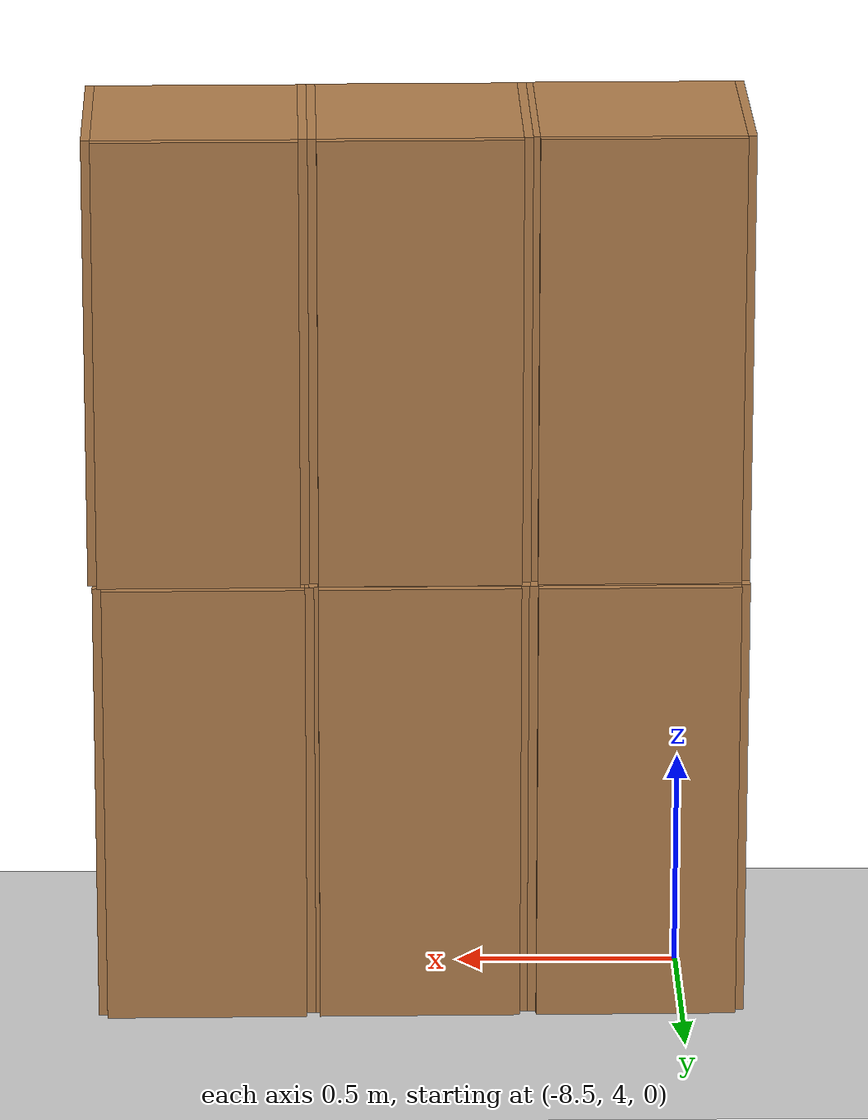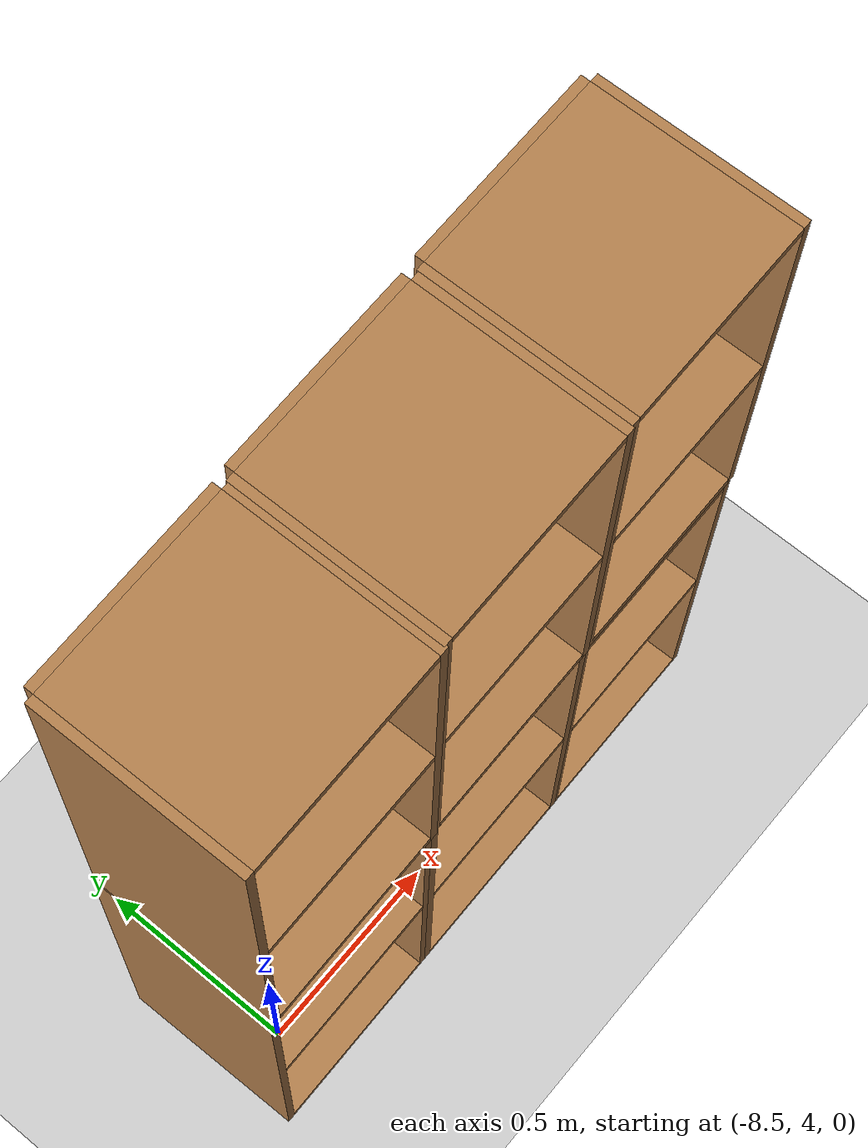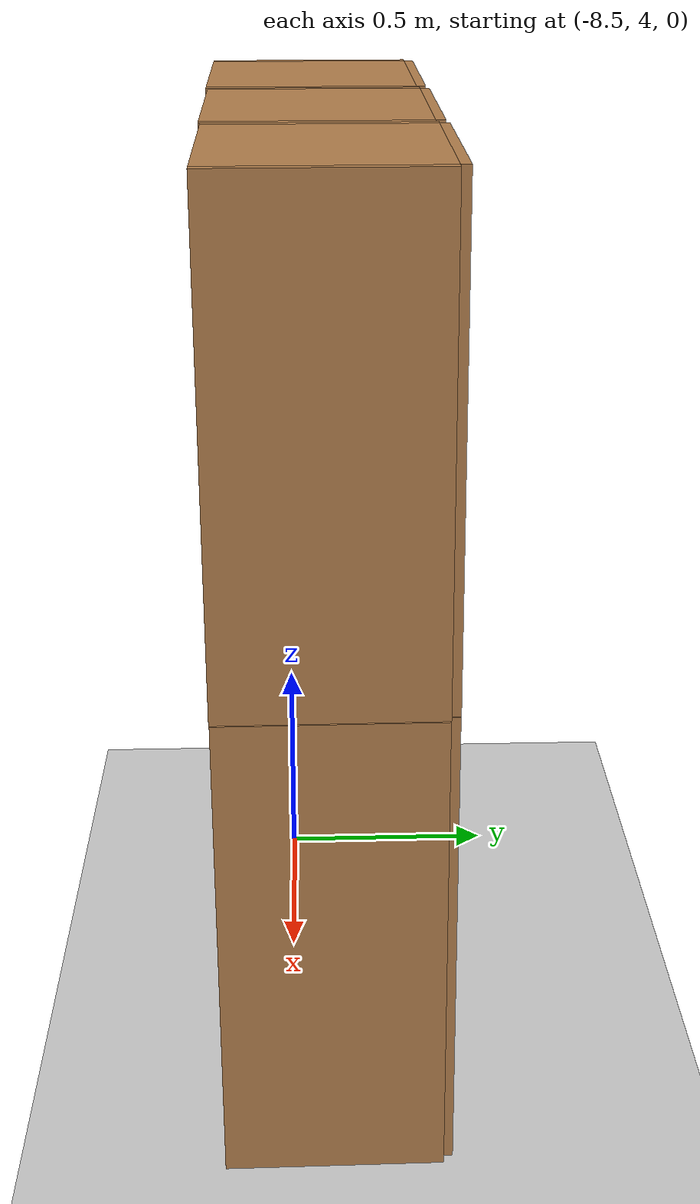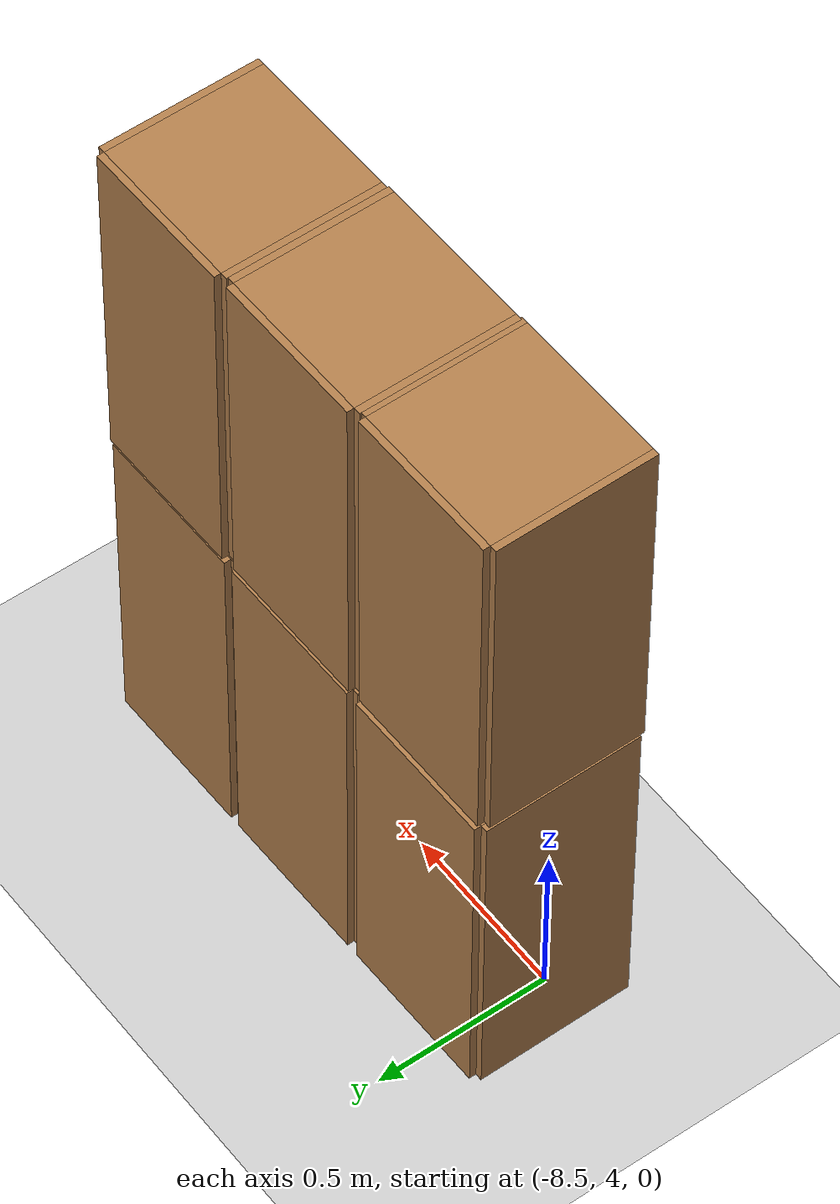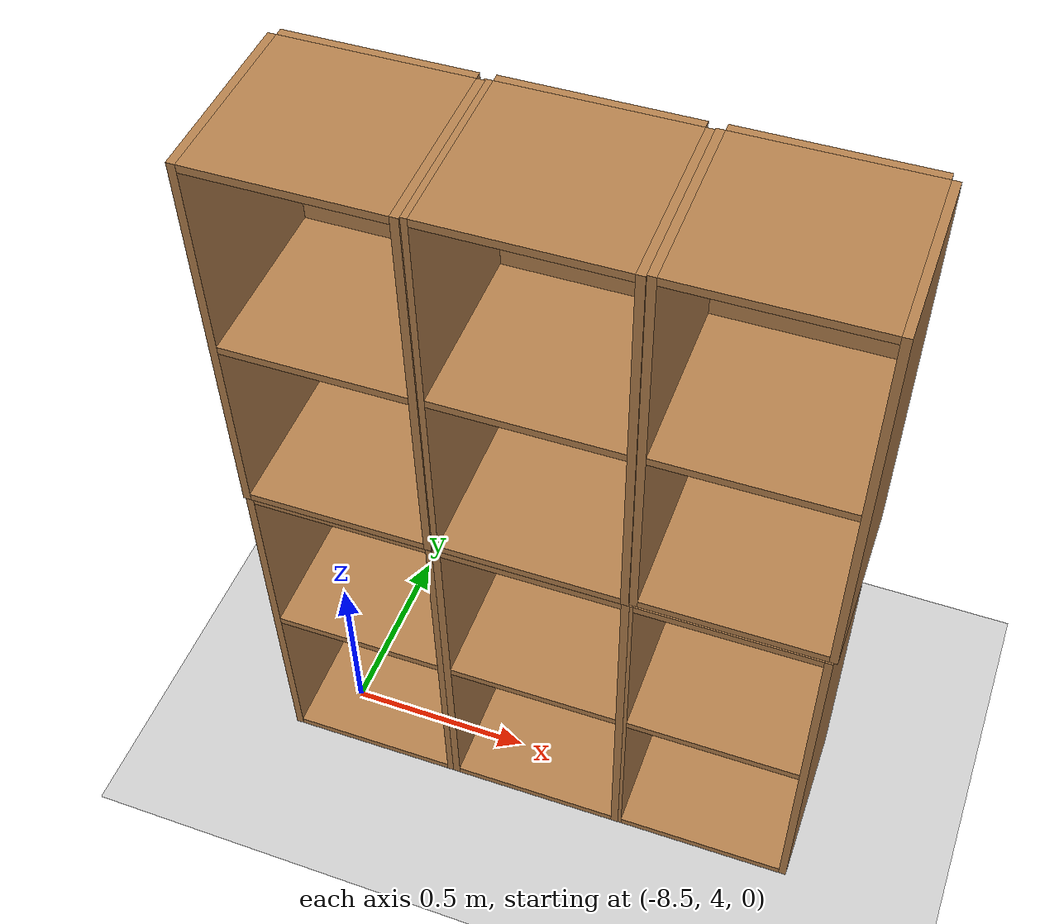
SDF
<sdf version="1.7">
 <world name="default">
  <model name="ground_plane">
   <static>1</static>
   <link name="link">
    <collision name="collision">
     <geometry><plane><normal>0 0 1</normal><size>100 100</size></plane></geometry>
     <surface><friction><ode><mu>100</mu><mu2>50</mu2></ode></friction></surface>
    </collision>
    <visual name="visual">
     <cast_shadows>0</cast_shadows>
     <geometry><plane><normal>0 0 1</normal><size>100 100</size></plane></geometry>
     <material>
      <script><uri>file://media/materials/scripts/gazebo.material</uri><name>Gazebo/Grey</name></script>
     </material>
    </visual>
   </link>
  </model>
  <model name="cabinet_clone">
   <static>1</static>
   <link name="cabinet_bottom_plate">
    <inertial>
     <pose>0 0 -1 0 -0 0</pose>
     <inertia><ixx>2.05</ixx><ixy>0</ixy><ixz>0</ixz><iyy>2.05</iyy><iyz>0</iyz><izz>2.05</izz></inertia>
     <mass>25</mass>
    </inertial>
    <collision name="cabinet_bottom_plate_geom">
     <pose>0 0 0.01 0 -0 0</pose>
     <geometry><box><size>0.45 0.45 0.02</size></box></geometry>
    </collision>
    <visual name="cabinet_bottom_plate_geom_visual">
     <pose>0 0 0.01 0 -0 0</pose>
     <geometry><box><size>0.45 0.45 0.02</size></box></geometry>
     <material>
      <script><uri>file://media/materials/scripts/gazebo.material</uri><name>Gazebo/Wood</name></script>
     </material>
    </visual>
    <collision name="cabinet_bottom_plate_geom_cabinet_back_plate">
     <pose>0.235 0 0.51 0 -0 0</pose>
     <geometry><box><size>0.02 0.45 1.02</size></box></geometry>
    </collision>
    <visual name="cabinet_bottom_plate_geom_cabinet_back_plate_visual">
     <pose>0.235 0 0.51 0 -0 0</pose>
     <geometry><box><size>0.02 0.45 1.02</size></box></geometry>
     <material>
      <script><uri>file://media/materials/scripts/gazebo.material</uri><name>Gazebo/Wood</name></script>
     </material>
    </visual>
    <collision name="cabinet_bottom_plate_geom_cabinet_left_plate">
     <pose>0 0.235 0.51 0 -0 0</pose>
     <geometry><box><size>0.45 0.02 1.02</size></box></geometry>
    </collision>
    <visual name="cabinet_bottom_plate_geom_cabinet_left_plate_visual">
     <pose>0 0.235 0.51 0 -0 0</pose>
     <geometry><box><size>0.45 0.02 1.02</size></box></geometry>
     <material>
      <script><uri>file://media/materials/scripts/gazebo.material</uri><name>Gazebo/Wood</name></script>
     </material>
    </visual>
    <collision name="cabinet_bottom_plate_geom_cabinet_middle_plate">
     <pose>0 0 0.51 0 -0 0</pose>
     <geometry><box><size>0.45 0.45 0.02</size></box></geometry>
    </collision>
    <visual name="cabinet_bottom_plate_geom_cabinet_middle_plate_visual">
     <pose>0 0 0.51 0 -0 0</pose>
     <geometry><box><size>0.45 0.45 0.02</size></box></geometry>
     <material>
      <script><uri>file://media/materials/scripts/gazebo.material</uri><name>Gazebo/Wood</name></script>
     </material>
    </visual>
    <collision name="cabinet_bottom_plate_geom_cabinet_right_plate">
     <pose>0 -0.235 0.51 0 -0 0</pose>
     <geometry><box><size>0.45 0.02 1.02</size></box></geometry>
    </collision>
    <visual name="cabinet_bottom_plate_geom_cabinet_right_plate_visual">
     <pose>0 -0.235 0.51 0 -0 0</pose>
     <geometry><box><size>0.45 0.02 1.02</size></box></geometry>
     <material>
      <script><uri>file://media/materials/scripts/gazebo.material</uri><name>Gazebo/Wood</name></script>
     </material>
    </visual>
    <collision name="cabinet_bottom_plate_geom_cabinet_top_plate">
     <pose>0 0 1.01 0 -0 0</pose>
     <geometry><box><size>0.45 0.45 0.02</size></box></geometry>
    </collision>
    <visual name="cabinet_bottom_plate_geom_cabinet_top_plate_visual">
     <pose>0 0 1.01 0 -0 0</pose>
     <geometry><box><size>0.45 0.45 0.02</size></box></geometry>
     <material>
      <script><uri>file://media/materials/scripts/gazebo.material</uri><name>Gazebo/Wood</name></script>
     </material>
    </visual>
   </link>
   <pose>-7.907 4.0827 0 0 -0 1.58053</pose>
  </model>
  <model name="cabinet_clone_0">
   <static>1</static>
   <link name="cabinet_bottom_plate">
    <inertial>
     <pose>0 0 -1 0 -0 0</pose>
     <inertia><ixx>2.05</ixx><ixy>0</ixy><ixz>0</ixz><iyy>2.05</iyy><iyz>0</iyz><izz>2.05</izz></inertia>
     <mass>25</mass>
    </inertial>
    <collision name="cabinet_bottom_plate_geom">
     <pose>0 0 0.01 0 -0 0</pose>
     <geometry><box><size>0.45 0.45 0.02</size></box></geometry>
    </collision>
    <visual name="cabinet_bottom_plate_geom_visual">
     <pose>0 0 0.01 0 -0 0</pose>
     <geometry><box><size>0.45 0.45 0.02</size></box></geometry>
     <material>
      <script><uri>file://media/materials/scripts/gazebo.material</uri><name>Gazebo/Wood</name></script>
     </material>
    </visual>
    <collision name="cabinet_bottom_plate_geom_cabinet_back_plate">
     <pose>0.235 0 0.51 0 -0 0</pose>
     <geometry><box><size>0.02 0.45 1.02</size></box></geometry>
    </collision>
    <visual name="cabinet_bottom_plate_geom_cabinet_back_plate_visual">
     <pose>0.235 0 0.51 0 -0 0</pose>
     <geometry><box><size>0.02 0.45 1.02</size></box></geometry>
     <material>
      <script><uri>file://media/materials/scripts/gazebo.material</uri><name>Gazebo/Wood</name></script>
     </material>
    </visual>
    <collision name="cabinet_bottom_plate_geom_cabinet_left_plate">
     <pose>0 0.235 0.51 0 -0 0</pose>
     <geometry><box><size>0.45 0.02 1.02</size></box></geometry>
    </collision>
    <visual name="cabinet_bottom_plate_geom_cabinet_left_plate_visual">
     <pose>0 0.235 0.51 0 -0 0</pose>
     <geometry><box><size>0.45 0.02 1.02</size></box></geometry>
     <material>
      <script><uri>file://media/materials/scripts/gazebo.material</uri><name>Gazebo/Wood</name></script>
     </material>
    </visual>
    <collision name="cabinet_bottom_plate_geom_cabinet_middle_plate">
     <pose>0 0 0.51 0 -0 0</pose>
     <geometry><box><size>0.45 0.45 0.02</size></box></geometry>
    </collision>
    <visual name="cabinet_bottom_plate_geom_cabinet_middle_plate_visual">
     <pose>0 0 0.51 0 -0 0</pose>
     <geometry><box><size>0.45 0.45 0.02</size></box></geometry>
     <material>
      <script><uri>file://media/materials/scripts/gazebo.material</uri><name>Gazebo/Wood</name></script>
     </material>
    </visual>
    <collision name="cabinet_bottom_plate_geom_cabinet_right_plate">
     <pose>0 -0.235 0.51 0 -0 0</pose>
     <geometry><box><size>0.45 0.02 1.02</size></box></geometry>
    </collision>
    <visual name="cabinet_bottom_plate_geom_cabinet_right_plate_visual">
     <pose>0 -0.235 0.51 0 -0 0</pose>
     <geometry><box><size>0.45 0.02 1.02</size></box></geometry>
     <material>
      <script><uri>file://media/materials/scripts/gazebo.material</uri><name>Gazebo/Wood</name></script>
     </material>
    </visual>
    <collision name="cabinet_bottom_plate_geom_cabinet_top_plate">
     <pose>0 0 1.01 0 -0 0</pose>
     <geometry><box><size>0.45 0.45 0.02</size></box></geometry>
    </collision>
    <visual name="cabinet_bottom_plate_geom_cabinet_top_plate_visual">
     <pose>0 0 1.01 0 -0 0</pose>
     <geometry><box><size>0.45 0.45 0.02</size></box></geometry>
     <material>
      <script><uri>file://media/materials/scripts/gazebo.material</uri><name>Gazebo/Wood</name></script>
     </material>
    </visual>
   </link>
   <pose>-7.42774 4.08772 0 0 -0 1.58053</pose>
  </model>
  <model name="cabinet_clone_1_clone">
   <static>1</static>
   <link name="cabinet_bottom_plate">
    <inertial>
     <pose>0 0 -1 0 -0 0</pose>
     <inertia><ixx>2.05</ixx><ixy>0</ixy><ixz>0</ixz><iyy>2.05</iyy><iyz>0</iyz><izz>2.05</izz></inertia>
     <mass>25</mass>
    </inertial>
    <collision name="cabinet_bottom_plate_geom">
     <pose>0 0 0.01 0 -0 0</pose>
     <geometry><box><size>0.45 0.45 0.02</size></box></geometry>
    </collision>
    <visual name="cabinet_bottom_plate_geom_visual">
     <pose>0 0 0.01 0 -0 0</pose>
     <geometry><box><size>0.45 0.45 0.02</size></box></geometry>
     <material>
      <script><uri>file://media/materials/scripts/gazebo.material</uri><name>Gazebo/Wood</name></script>
     </material>
    </visual>
    <collision name="cabinet_bottom_plate_geom_cabinet_back_plate">
     <pose>0.235 0 0.51 0 -0 0</pose>
     <geometry><box><size>0.02 0.45 1.02</size></box></geometry>
    </collision>
    <visual name="cabinet_bottom_plate_geom_cabinet_back_plate_visual">
     <pose>0.235 0 0.51 0 -0 0</pose>
     <geometry><box><size>0.02 0.45 1.02</size></box></geometry>
     <material>
      <script><uri>file://media/materials/scripts/gazebo.material</uri><name>Gazebo/Wood</name></script>
     </material>
    </visual>
    <collision name="cabinet_bottom_plate_geom_cabinet_left_plate">
     <pose>0 0.235 0.51 0 -0 0</pose>
     <geometry><box><size>0.45 0.02 1.02</size></box></geometry>
    </collision>
    <visual name="cabinet_bottom_plate_geom_cabinet_left_plate_visual">
     <pose>0 0.235 0.51 0 -0 0</pose>
     <geometry><box><size>0.45 0.02 1.02</size></box></geometry>
     <material>
      <script><uri>file://media/materials/scripts/gazebo.material</uri><name>Gazebo/Wood</name></script>
     </material>
    </visual>
    <collision name="cabinet_bottom_plate_geom_cabinet_middle_plate">
     <pose>0 0 0.51 0 -0 0</pose>
     <geometry><box><size>0.45 0.45 0.02</size></box></geometry>
    </collision>
    <visual name="cabinet_bottom_plate_geom_cabinet_middle_plate_visual">
     <pose>0 0 0.51 0 -0 0</pose>
     <geometry><box><size>0.45 0.45 0.02</size></box></geometry>
     <material>
      <script><uri>file://media/materials/scripts/gazebo.material</uri><name>Gazebo/Wood</name></script>
     </material>
    </visual>
    <collision name="cabinet_bottom_plate_geom_cabinet_right_plate">
     <pose>0 -0.235 0.51 0 -0 0</pose>
     <geometry><box><size>0.45 0.02 1.02</size></box></geometry>
    </collision>
    <visual name="cabinet_bottom_plate_geom_cabinet_right_plate_visual">
     <pose>0 -0.235 0.51 0 -0 0</pose>
     <geometry><box><size>0.45 0.02 1.02</size></box></geometry>
     <material>
      <script><uri>file://media/materials/scripts/gazebo.material</uri><name>Gazebo/Wood</name></script>
     </material>
    </visual>
    <collision name="cabinet_bottom_plate_geom_cabinet_top_plate">
     <pose>0 0 1.01 0 -0 0</pose>
     <geometry><box><size>0.45 0.45 0.02</size></box></geometry>
    </collision>
    <visual name="cabinet_bottom_plate_geom_cabinet_top_plate_visual">
     <pose>0 0 1.01 0 -0 0</pose>
     <geometry><box><size>0.45 0.45 0.02</size></box></geometry>
     <material>
      <script><uri>file://media/materials/scripts/gazebo.material</uri><name>Gazebo/Wood</name></script>
     </material>
    </visual>
   </link>
   <pose>-7.90804 4.07828 1.02659 0 -0 1.58053</pose>
  </model>
  <model name="cabinet_clone_1_clone_0">
   <static>1</static>
   <link name="cabinet_bottom_plate">
    <inertial>
     <pose>0 0 -1 0 -0 0</pose>
     <inertia><ixx>2.05</ixx><ixy>0</ixy><ixz>0</ixz><iyy>2.05</iyy><iyz>0</iyz><izz>2.05</izz></inertia>
     <mass>25</mass>
    </inertial>
    <collision name="cabinet_bottom_plate_geom">
     <pose>0 0 0.01 0 -0 0</pose>
     <geometry><box><size>0.45 0.45 0.02</size></box></geometry>
    </collision>
    <visual name="cabinet_bottom_plate_geom_visual">
     <pose>0 0 0.01 0 -0 0</pose>
     <geometry><box><size>0.45 0.45 0.02</size></box></geometry>
     <material>
      <script><uri>file://media/materials/scripts/gazebo.material</uri><name>Gazebo/Wood</name></script>
     </material>
    </visual>
    <collision name="cabinet_bottom_plate_geom_cabinet_back_plate">
     <pose>0.235 0 0.51 0 -0 0</pose>
     <geometry><box><size>0.02 0.45 1.02</size></box></geometry>
    </collision>
    <visual name="cabinet_bottom_plate_geom_cabinet_back_plate_visual">
     <pose>0.235 0 0.51 0 -0 0</pose>
     <geometry><box><size>0.02 0.45 1.02</size></box></geometry>
     <material>
      <script><uri>file://media/materials/scripts/gazebo.material</uri><name>Gazebo/Wood</name></script>
     </material>
    </visual>
    <collision name="cabinet_bottom_plate_geom_cabinet_left_plate">
     <pose>0 0.235 0.51 0 -0 0</pose>
     <geometry><box><size>0.45 0.02 1.02</size></box></geometry>
    </collision>
    <visual name="cabinet_bottom_plate_geom_cabinet_left_plate_visual">
     <pose>0 0.235 0.51 0 -0 0</pose>
     <geometry><box><size>0.45 0.02 1.02</size></box></geometry>
     <material>
      <script><uri>file://media/materials/scripts/gazebo.material</uri><name>Gazebo/Wood</name></script>
     </material>
    </visual>
    <collision name="cabinet_bottom_plate_geom_cabinet_middle_plate">
     <pose>0 0 0.51 0 -0 0</pose>
     <geometry><box><size>0.45 0.45 0.02</size></box></geometry>
    </collision>
    <visual name="cabinet_bottom_plate_geom_cabinet_middle_plate_visual">
     <pose>0 0 0.51 0 -0 0</pose>
     <geometry><box><size>0.45 0.45 0.02</size></box></geometry>
     <material>
      <script><uri>file://media/materials/scripts/gazebo.material</uri><name>Gazebo/Wood</name></script>
     </material>
    </visual>
    <collision name="cabinet_bottom_plate_geom_cabinet_right_plate">
     <pose>0 -0.235 0.51 0 -0 0</pose>
     <geometry><box><size>0.45 0.02 1.02</size></box></geometry>
    </collision>
    <visual name="cabinet_bottom_plate_geom_cabinet_right_plate_visual">
     <pose>0 -0.235 0.51 0 -0 0</pose>
     <geometry><box><size>0.45 0.02 1.02</size></box></geometry>
     <material>
      <script><uri>file://media/materials/scripts/gazebo.material</uri><name>Gazebo/Wood</name></script>
     </material>
    </visual>
    <collision name="cabinet_bottom_plate_geom_cabinet_top_plate">
     <pose>0 0 1.01 0 -0 0</pose>
     <geometry><box><size>0.45 0.45 0.02</size></box></geometry>
    </collision>
    <visual name="cabinet_bottom_plate_geom_cabinet_top_plate_visual">
     <pose>0 0 1.01 0 -0 0</pose>
     <geometry><box><size>0.45 0.45 0.02</size></box></geometry>
     <material>
      <script><uri>file://media/materials/scripts/gazebo.material</uri><name>Gazebo/Wood</name></script>
     </material>
    </visual>
   </link>
   <pose>-7.41853 4.08745 1.02659 0 -0 1.58053</pose>
  </model>
  <model name="cabinet_clone_2">
   <static>1</static>
   <link name="cabinet_bottom_plate">
    <inertial>
     <pose>0 0 -1 0 -0 0</pose>
     <inertia><ixx>2.05</ixx><ixy>0</ixy><ixz>0</ixz><iyy>2.05</iyy><iyz>0</iyz><izz>2.05</izz></inertia>
     <mass>25</mass>
    </inertial>
    <collision name="cabinet_bottom_plate_geom">
     <pose>0 0 0.01 0 -0 0</pose>
     <geometry><box><size>0.45 0.45 0.02</size></box></geometry>
    </collision>
    <visual name="cabinet_bottom_plate_geom_visual">
     <pose>0 0 0.01 0 -0 0</pose>
     <geometry><box><size>0.45 0.45 0.02</size></box></geometry>
     <material>
      <script><uri>file://media/materials/scripts/gazebo.material</uri><name>Gazebo/Wood</name></script>
     </material>
    </visual>
    <collision name="cabinet_bottom_plate_geom_cabinet_back_plate">
     <pose>0.235 0 0.51 0 -0 0</pose>
     <geometry><box><size>0.02 0.45 1.02</size></box></geometry>
    </collision>
    <visual name="cabinet_bottom_plate_geom_cabinet_back_plate_visual">
     <pose>0.235 0 0.51 0 -0 0</pose>
     <geometry><box><size>0.02 0.45 1.02</size></box></geometry>
     <material>
      <script><uri>file://media/materials/scripts/gazebo.material</uri><name>Gazebo/Wood</name></script>
     </material>
    </visual>
    <collision name="cabinet_bottom_plate_geom_cabinet_left_plate">
     <pose>0 0.235 0.51 0 -0 0</pose>
     <geometry><box><size>0.45 0.02 1.02</size></box></geometry>
    </collision>
    <visual name="cabinet_bottom_plate_geom_cabinet_left_plate_visual">
     <pose>0 0.235 0.51 0 -0 0</pose>
     <geometry><box><size>0.45 0.02 1.02</size></box></geometry>
     <material>
      <script><uri>file://media/materials/scripts/gazebo.material</uri><name>Gazebo/Wood</name></script>
     </material>
    </visual>
    <collision name="cabinet_bottom_plate_geom_cabinet_middle_plate">
     <pose>0 0 0.51 0 -0 0</pose>
     <geometry><box><size>0.45 0.45 0.02</size></box></geometry>
    </collision>
    <visual name="cabinet_bottom_plate_geom_cabinet_middle_plate_visual">
     <pose>0 0 0.51 0 -0 0</pose>
     <geometry><box><size>0.45 0.45 0.02</size></box></geometry>
     <material>
      <script><uri>file://media/materials/scripts/gazebo.material</uri><name>Gazebo/Wood</name></script>
     </material>
    </visual>
    <collision name="cabinet_bottom_plate_geom_cabinet_right_plate">
     <pose>0 -0.235 0.51 0 -0 0</pose>
     <geometry><box><size>0.45 0.02 1.02</size></box></geometry>
    </collision>
    <visual name="cabinet_bottom_plate_geom_cabinet_right_plate_visual">
     <pose>0 -0.235 0.51 0 -0 0</pose>
     <geometry><box><size>0.45 0.02 1.02</size></box></geometry>
     <material>
      <script><uri>file://media/materials/scripts/gazebo.material</uri><name>Gazebo/Wood</name></script>
     </material>
    </visual>
    <collision name="cabinet_bottom_plate_geom_cabinet_top_plate">
     <pose>0 0 1.01 0 -0 0</pose>
     <geometry><box><size>0.45 0.45 0.02</size></box></geometry>
    </collision>
    <visual name="cabinet_bottom_plate_geom_cabinet_top_plate_visual">
     <pose>0 0 1.01 0 -0 0</pose>
     <geometry><box><size>0.45 0.45 0.02</size></box></geometry>
     <material>
      <script><uri>file://media/materials/scripts/gazebo.material</uri><name>Gazebo/Wood</name></script>
     </material>
    </visual>
   </link>
   <pose>-8.3941 4.07807 0 0 -0 1.58053</pose>
  </model>
  <model name="cabinet_clone_1_clone_1">
   <static>1</static>
   <link name="cabinet_bottom_plate">
    <inertial>
     <pose>0 0 -1 0 -0 0</pose>
     <inertia><ixx>2.05</ixx><ixy>0</ixy><ixz>0</ixz><iyy>2.05</iyy><iyz>0</iyz><izz>2.05</izz></inertia>
     <mass>25</mass>
    </inertial>
    <collision name="cabinet_bottom_plate_geom">
     <pose>0 0 0.01 0 -0 0</pose>
     <geometry><box><size>0.45 0.45 0.02</size></box></geometry>
    </collision>
    <visual name="cabinet_bottom_plate_geom_visual">
     <pose>0 0 0.01 0 -0 0</pose>
     <geometry><box><size>0.45 0.45 0.02</size></box></geometry>
     <material>
      <script><uri>file://media/materials/scripts/gazebo.material</uri><name>Gazebo/Wood</name></script>
     </material>
    </visual>
    <collision name="cabinet_bottom_plate_geom_cabinet_back_plate">
     <pose>0.235 0 0.51 0 -0 0</pose>
     <geometry><box><size>0.02 0.45 1.02</size></box></geometry>
    </collision>
    <visual name="cabinet_bottom_plate_geom_cabinet_back_plate_visual">
     <pose>0.235 0 0.51 0 -0 0</pose>
     <geometry><box><size>0.02 0.45 1.02</size></box></geometry>
     <material>
      <script><uri>file://media/materials/scripts/gazebo.material</uri><name>Gazebo/Wood</name></script>
     </material>
    </visual>
    <collision name="cabinet_bottom_plate_geom_cabinet_left_plate">
     <pose>0 0.235 0.51 0 -0 0</pose>
     <geometry><box><size>0.45 0.02 1.02</size></box></geometry>
    </collision>
    <visual name="cabinet_bottom_plate_geom_cabinet_left_plate_visual">
     <pose>0 0.235 0.51 0 -0 0</pose>
     <geometry><box><size>0.45 0.02 1.02</size></box></geometry>
     <material>
      <script><uri>file://media/materials/scripts/gazebo.material</uri><name>Gazebo/Wood</name></script>
     </material>
    </visual>
    <collision name="cabinet_bottom_plate_geom_cabinet_middle_plate">
     <pose>0 0 0.51 0 -0 0</pose>
     <geometry><box><size>0.45 0.45 0.02</size></box></geometry>
    </collision>
    <visual name="cabinet_bottom_plate_geom_cabinet_middle_plate_visual">
     <pose>0 0 0.51 0 -0 0</pose>
     <geometry><box><size>0.45 0.45 0.02</size></box></geometry>
     <material>
      <script><uri>file://media/materials/scripts/gazebo.material</uri><name>Gazebo/Wood</name></script>
     </material>
    </visual>
    <collision name="cabinet_bottom_plate_geom_cabinet_right_plate">
     <pose>0 -0.235 0.51 0 -0 0</pose>
     <geometry><box><size>0.45 0.02 1.02</size></box></geometry>
    </collision>
    <visual name="cabinet_bottom_plate_geom_cabinet_right_plate_visual">
     <pose>0 -0.235 0.51 0 -0 0</pose>
     <geometry><box><size>0.45 0.02 1.02</size></box></geometry>
     <material>
      <script><uri>file://media/materials/scripts/gazebo.material</uri><name>Gazebo/Wood</name></script>
     </material>
    </visual>
    <collision name="cabinet_bottom_plate_geom_cabinet_top_plate">
     <pose>0 0 1.01 0 -0 0</pose>
     <geometry><box><size>0.45 0.45 0.02</size></box></geometry>
    </collision>
    <visual name="cabinet_bottom_plate_geom_cabinet_top_plate_visual">
     <pose>0 0 1.01 0 -0 0</pose>
     <geometry><box><size>0.45 0.45 0.02</size></box></geometry>
     <material>
      <script><uri>file://media/materials/scripts/gazebo.material</uri><name>Gazebo/Wood</name></script>
     </material>
    </visual>
   </link>
   <pose>-8.39303 4.06879 1.02659 0 -0 1.58053</pose>
  </model>
 </world>
</sdf>
